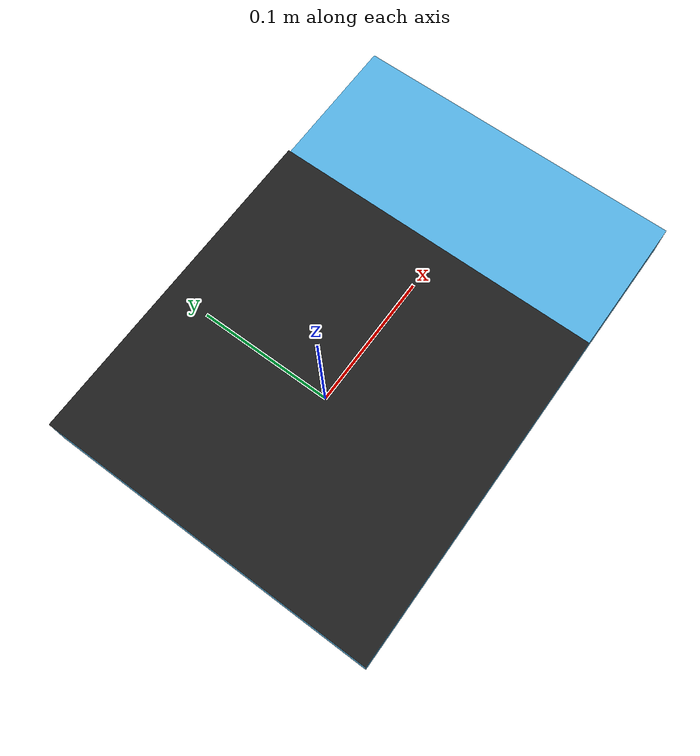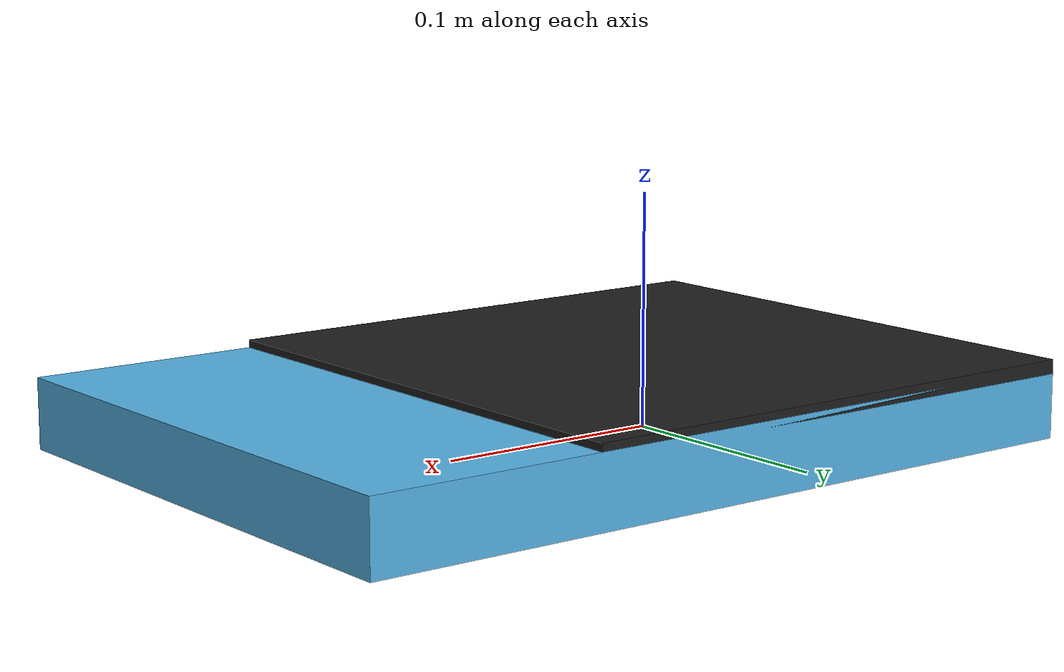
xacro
<?xml version="1.0"?>
<robot name="myrmex_3x3_board" xmlns:xacro="http://www.ros.org/wiki/xacro">
   <link name="world"/>
   <xacro:arg name="board_row_nb" default="3"/>
   <xacro:arg name="board_col_nb" default="3"/>
   <xacro:arg name="pos_xyz" default="0 0 0"/>
   <xacro:arg name="ori_rpy" default="0 0 0"/>
   <xacro:arg name="ns" default=""/>

  <joint name="board_base_joint" type="fixed">
      <parent link="world" />
      <child link="board_base" />
      <origin xyz="$(arg pos_xyz)" rpy="$(arg ori_rpy)"/>
  </joint>

   <link name="board_base">
       <inertial>
        <origin xyz="0 0 0.015" rpy="0 0 0" />
        <mass value="0.400" />
        <inertia ixx="0.0002" ixy="0.0" ixz="0.0"
        iyy="0.0002" iyz="0.0" izz="0.0001" />
      </inertial>
      <xacro:property name="board_row_nb" value="$(arg board_row_nb)" />
      <xacro:property name="board_col_nb" value="$(arg board_col_nb)" />
      <visual>
        <origin xyz="0.05 0 0.015" rpy="0 0 0"/>
        <geometry>
          <box size="${0.1 + board_row_nb*0.08} ${board_col_nb*0.08} 0.03"/>
        </geometry>
      </visual>
      <collision>
        <origin xyz="0.05 0 0.015" rpy="0 0 0"/>
        <geometry>
          <box size="${0.1 + board_row_nb*0.08} ${board_col_nb*0.08} 0.03"/>
        </geometry>
      </collision>
    </link>

   <xacro:include filename="$(find myrmex_description)/models/myrmex_tactile_surface.urdf.xacro" />
   <xacro:myrmex_tactile_surface prefix="$(arg ns)" parent="board_base" size_x="$(arg board_row_nb)" size_y="$(arg board_col_nb)"
                                 foam_size_x="0.08" foam_size_y="0.08" />
   <xacro:property name="ns" value="$(arg ns)" />
   <xacro:property name="prefix_" value="${ns + '_' if ns else ''}" />
   <xacro:myrmex_tactile_markers parent="${prefix_}myrmex_foam" prefix="$(arg ns)" channel="myrmex_sensor0" size_x="$(arg board_row_nb)" size_y="$(arg board_col_nb)">
      <origin xyz="0 0 0.001" rpy="0 0 0"/>
   </xacro:myrmex_tactile_markers>
</robot>

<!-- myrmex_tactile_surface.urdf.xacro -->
<robot name="myrmex_quick_mount" xmlns:xacro="http://www.ros.org/wiki/xacro">

  <xacro:macro name="myrmex_tactile_surface" params="prefix:='' parent size_x:=1 size_y:=1 foam_size_x:=0.095 foam_size_y:=0.095 ">
    <xacro:property name="prefix_" value="${prefix + '_' if prefix else ''}" />

    <joint name="${prefix_}myrmex_bumper_joint" type="prismatic">
      <parent link="${parent}" />
      <child link="${prefix_}myrmex_foam" />
      <origin xyz="0 0 0.03034" rpy="0 0 0"/>
      <axis xyz="0 0 1" />
       <limit lower="0.0" upper="0.001" effort="1" velocity="0.1" />
    </joint>

    <link name="${prefix_}myrmex_foam">
      <inertial>
        <origin xyz="0 0 0.0" rpy="0 0 0" />
        <mass value="${0.005*size_x*size_y}" />
        <inertia ixx="0.000002" ixy="0.0" ixz="0.0"
        iyy="0.000002" iyz="0.0" izz="0.000001" />
      </inertial>
      <visual>
        <origin xyz="0 0 0" rpy="0 0 0"/>
        <geometry>
          <xacro:if value="${1 if (size_x==1 and size_y==1) else 0}" >
            <xacro:property name="scale_x" value="${foam_size_x/0.095}" />
            <xacro:property name="scale_y" value="${foam_size_y/0.095}" />
            <mesh scale="${scale_x} ${scale_y} 1.0"
                filename="package://myrmex_description/models/meshes/myrmex_foam.stl"/>
          </xacro:if>
          <xacro:unless value="${1 if (size_x==1 and size_y==1) else 0}" >
            <box size="${foam_size_x*size_x} ${foam_size_y*size_y} 0.006"/>
          </xacro:unless>
        </geometry>
      </visual>
      <collision name="${prefix_}myrmex_foam">
        <origin xyz="0 0 0" rpy="0 0 0"/>
        <geometry>
          <box size="${foam_size_x*size_x} ${foam_size_y*size_y} 0.006"/>
        </geometry>
      </collision>
    </link>

    <gazebo reference="${prefix_}myrmex_foam">
      <material>Gazebo/Black</material>
      <sensor type="contact" name="${prefix_}myrmex_sensor">
        <always_on>1</always_on>
        <update_rate>1000.0</update_rate>
        <contact>
          <collision>${prefix_}myrmex_foam_collision</collision>
          <topic>${prefix_}myrmex_foam_collision</topic>
        </contact>
        <plugin name="${prefix_}myrmex_gazebo_ros_tactile_controller" filename="libgazebo_ros_tactile.so">
          <alwaysOn>true</alwaysOn>
          <robotNamespace>${prefix}</robotNamespace>
          <frameName>${prefix_}myrmex_foam</frameName>
          <updateRate>100.0</updateRate>
          <bumperTopicName>contacts/${prefix_}myrmex</bumperTopicName>
          <tactileTopicName>tactile_states/${prefix_}myrmex</tactileTopicName>
        </plugin>
      </sensor>
    </gazebo>
  </xacro:macro>

  <xacro:macro name="myrmex_tactile_markers" params="parent channel name:='myrmex_sensor' prefix:='' size_x:=1 size_y:=1 *origin">
    <xacro:property name="cell_size" value="0.005" />
    <xacro:property name="cell_spacing" value="0.005" />
    <xacro:property name="myrmex_size_x" value="${16*size_x}" />
    <xacro:property name="myrmex_size_y" value="${16*size_y}" />
    <xacro:property name="prefix_" value="${prefix + '_' if prefix else ''}" />
    <!-- tactile marker mapping description -->
    <sensor name="${prefix_}${name}" update_rate="100">
      <parent link="${parent}"/>
      <xacro:insert_block name="origin"/>
      <tactile channel="${prefix_}${channel}">
        <array rows="${myrmex_size_x}" cols="${myrmex_size_y}"
            order="row-major" size="${cell_size} ${cell_size}"
            offset="${cell_spacing * (myrmex_size_x -1)/2.0} ${cell_spacing * (myrmex_size_y -1)/2.0}">
        </array>
      </tactile>
    </sensor>
  </xacro:macro>
</robot>
